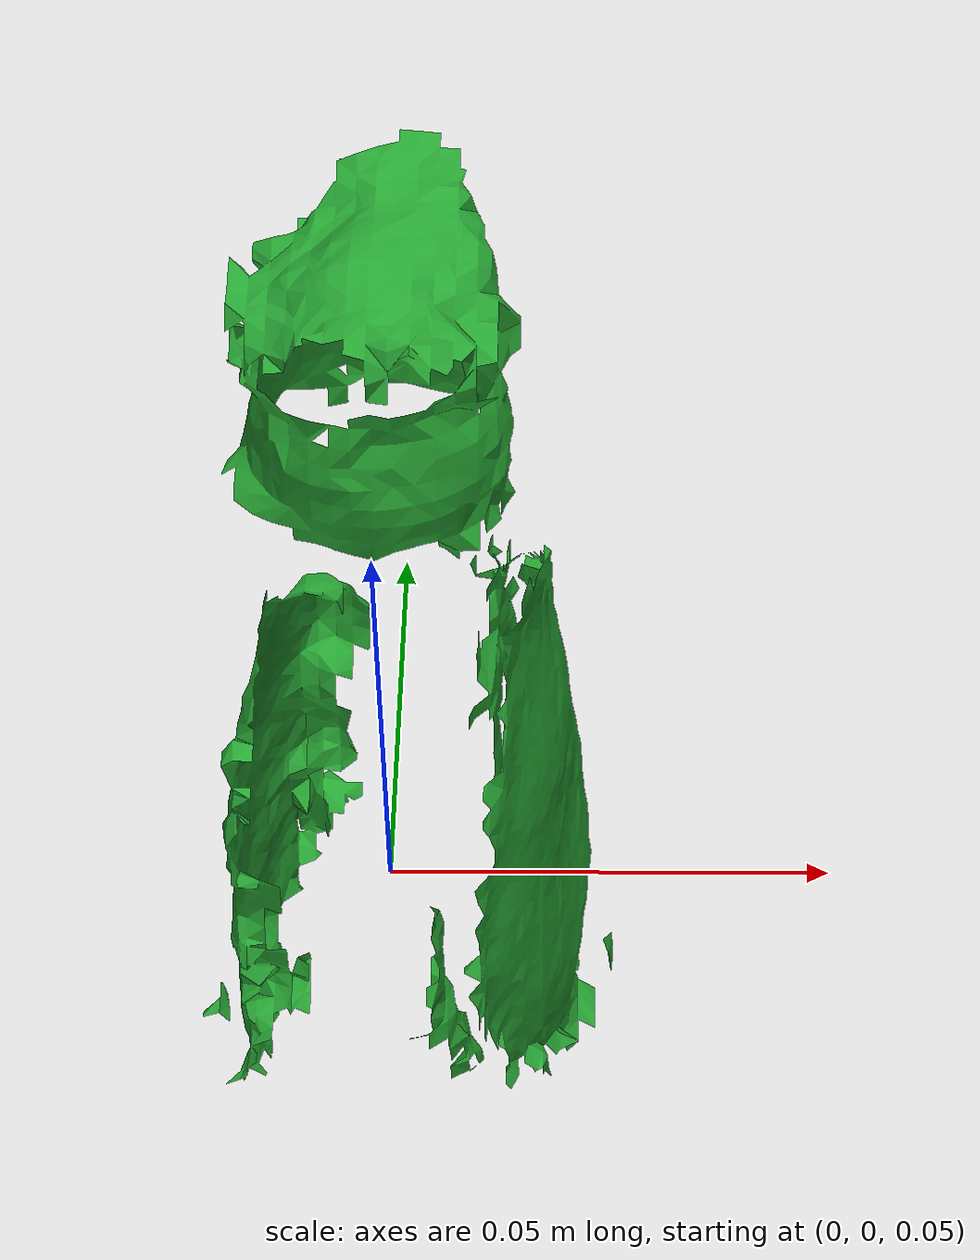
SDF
<?xml version='1.0'?>
<sdf version="1.4">
  <model name="softsoap_green">
    <static>false</static>
    <link name="link">
      <inertial>
        <pose>0.002711467314396058 -0.0036827102464818376 0.08050399332904928 -3.09949247557569 0.020218408768200784 2.836609239668184</pose>
        <mass>0.014505453508874349</mass>
        <inertia>
          <ixx>1.394094233883161e-05</ixx>
          <ixy>1.4780703444070653e-21</ixy>
          <ixz>1.665379690660459e-22</ixz>
          <iyy>1.294847885120882e-05</iyy>
          <iyz>2.606384954574543e-22</iyz>
          <izz>3.604306729422134e-06</izz>
        </inertia>
      </inertial>
      <collision name="collision">
        <geometry>
          <mesh>
            <!-- Use a downsampled mesh for collisions -->
            <uri>model:///softsoap_green/softsoap_green_250_collision.obj</uri>
	        </mesh>
        </geometry>
        <surface>
      </surface>
      </collision>
      <visual name="visual">
        <geometry>
          <mesh>
            <uri>model:///softsoap_green/optimized_tsdf_texture_mapped_mesh.obj</uri>
	        </mesh>
        </geometry>
        <material>
          <script>
            <uri>model:///softsoap_green/softsoap_green.material</uri>
            <name>softsoap_green</name>
          </script>
        </material>
      </visual>
    </link>
  </model>
</sdf>
